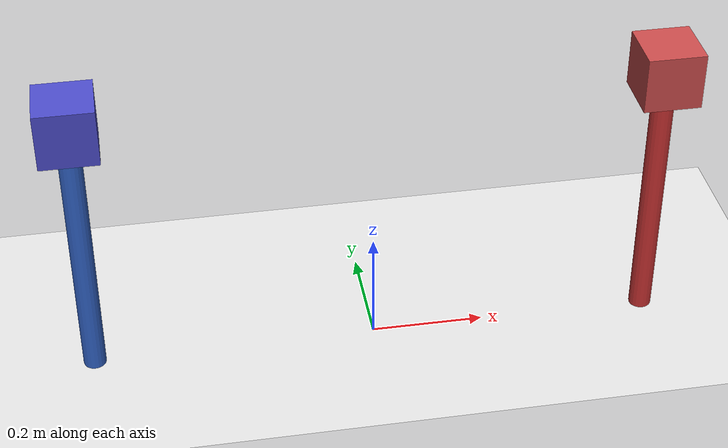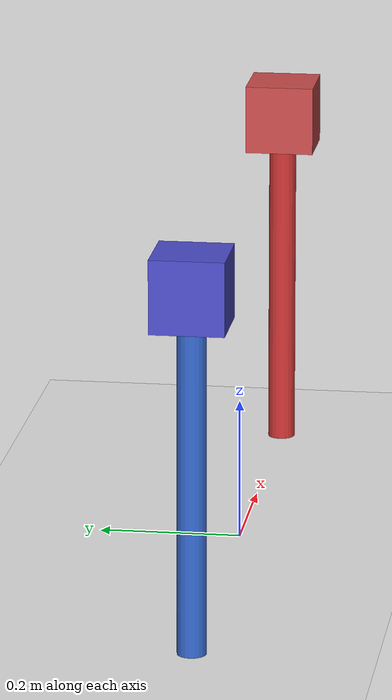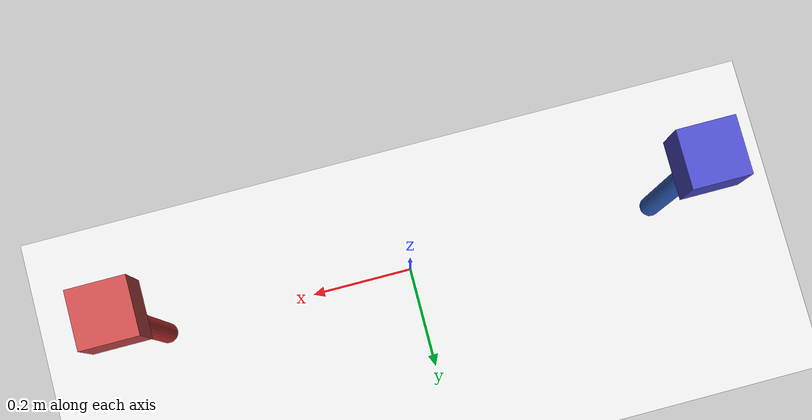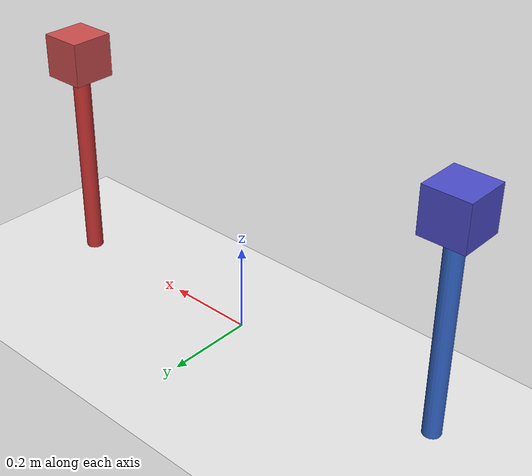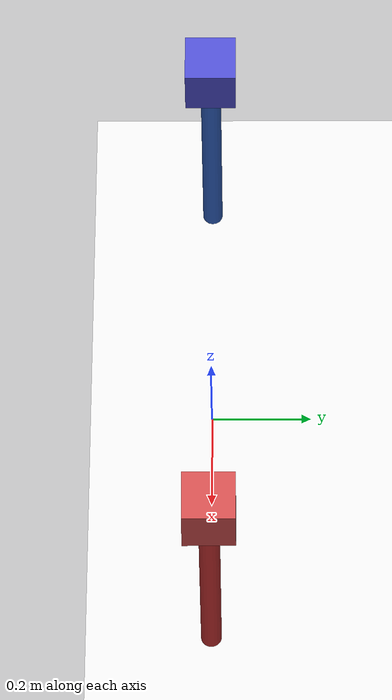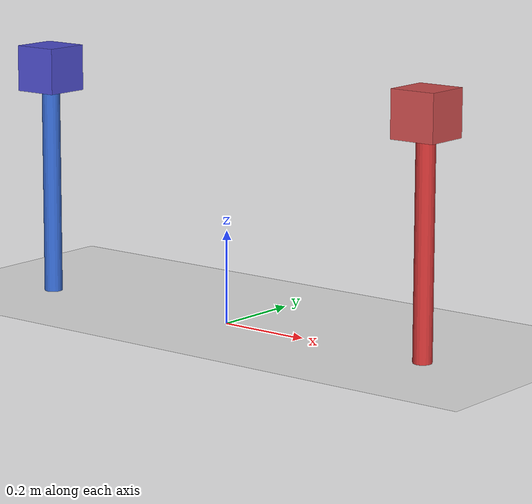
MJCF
<!-- MuJoCo model for Dual Pendulum Test (like bimanual robot) -->
<!-- Two independent pendulums controlled by separate hardware interfaces -->
<mujoco model="dual_pendulum">
  <compiler angle="radian"/>

  <option gravity="0 0 -9.81" timestep="0.001"/>

  <worldbody>
    <light diffuse=".5 .5 .5" pos="0 0 3" dir="0 0 -1"/>
    <geom name="floor" type="plane" size="2 2 0.1" rgba="0.9 0.9 0.9 1"/>

    <!-- Left Pendulum (at x=-0.5) -->
    <body name="left_base" pos="-0.5 0 0.5">
      <geom type="box" size="0.05 0.05 0.05" rgba="0.3 0.3 0.8 1"/>

      <body name="left_pendulum" pos="0 0 0">
        <joint name="left_joint1" type="hinge" axis="0 1 0" range="-3.14 3.14" damping="0.1"/>
        <geom type="capsule" fromto="0 0 0 0 0 -0.5" size="0.02" rgba="0.2 0.4 0.8 1" mass="1.0"/>
      </body>
    </body>

    <!-- Right Pendulum (at x=+0.5) -->
    <body name="right_base" pos="0.5 0 0.5">
      <geom type="box" size="0.05 0.05 0.05" rgba="0.8 0.3 0.3 1"/>

      <body name="right_pendulum" pos="0 0 0">
        <joint name="right_joint1" type="hinge" axis="0 1 0" range="-3.14 3.14" damping="0.1"/>
        <geom type="capsule" fromto="0 0 0 0 0 -0.5" size="0.02" rgba="0.8 0.2 0.2 1" mass="1.0"/>
      </body>
    </body>
  </worldbody>

  <!-- MIT mode actuators for both pendulums -->
  <actuator>
    <!-- Left pendulum actuators -->
    <position name="act_pos_left_joint1" joint="left_joint1" kp="100" kv="0" ctrlrange="-3.14 3.14"/>
    <velocity name="act_vel_left_joint1" joint="left_joint1" kv="10" ctrlrange="-10 10"/>
    <motor name="act_tau_left_joint1" joint="left_joint1" gear="1" ctrlrange="-50 50"/>

    <!-- Right pendulum actuators -->
    <position name="act_pos_right_joint1" joint="right_joint1" kp="100" kv="0" ctrlrange="-3.14 3.14"/>
    <velocity name="act_vel_right_joint1" joint="right_joint1" kv="10" ctrlrange="-10 10"/>
    <motor name="act_tau_right_joint1" joint="right_joint1" gear="1" ctrlrange="-50 50"/>
  </actuator>

  <keyframe>
    <key name="home" qpos="0 0"/>
    <key name="tilted" qpos="0.5 0.5"/>
    <key name="asymmetric" qpos="0.3 -0.3"/>
    <key name="horizontal" qpos="1.57 1.57"/>
  </keyframe>
</mujoco>
